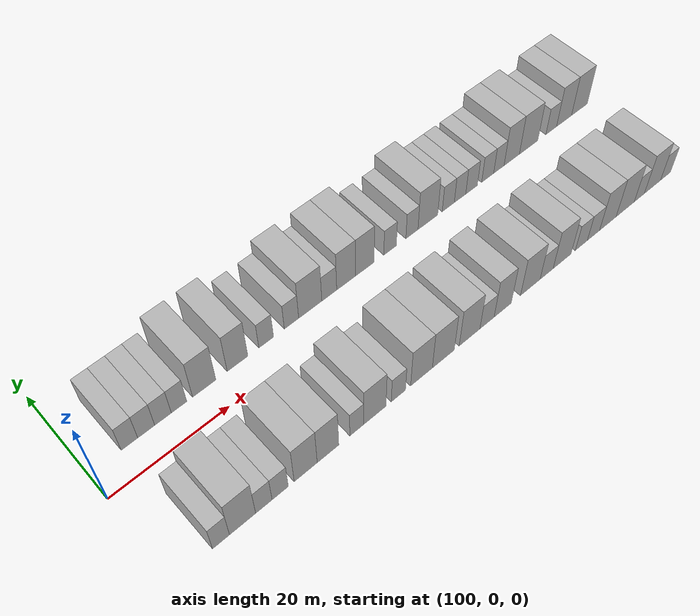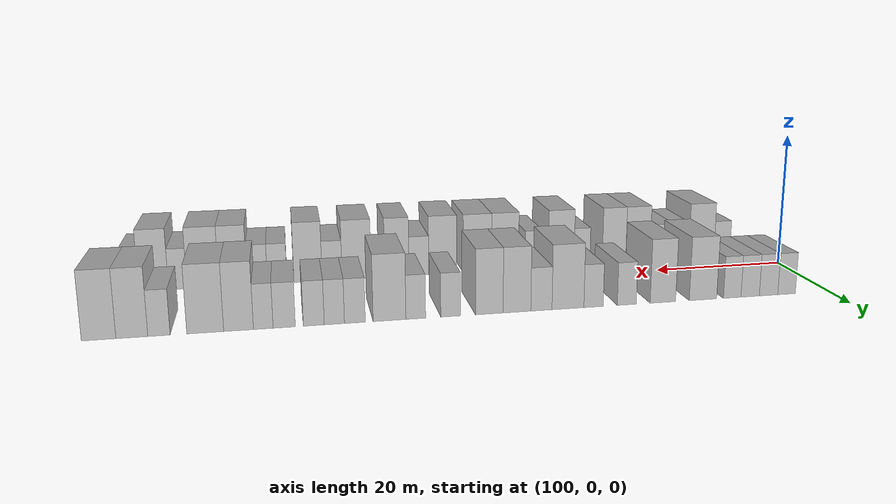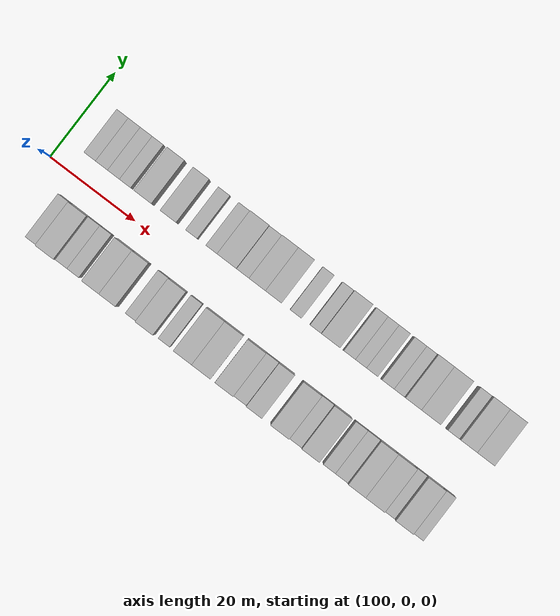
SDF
<sdf version="1.6">
 <world name="default">
  <model name="building_25">
   <static>1</static>
   <pose>106.5121 9.5000 0 0.000000 0.000000 1.570796</pose>
   <link name="link">
    <pose>0 0 3.00 0 0 0</pose>
    <collision name="collision"><geometry><box><size>10.0000 2.6872 6.0000</size></box></geometry></collision>
    <visual name="visual">
     <cast_shadows>0</cast_shadows>
     <geometry><box><size>10.0000 2.6872 6.0000</size></box></geometry>
     <material>
      <script>
       <uri>model://HANNAS_wall/materials/scripts</uri>
       <uri>model://HANNAS_wall/materials/textures</uri>
       <name>vrc/HANNAS_wall</name>
      </script>
     </material>
    </visual>
   </link>
  </model>
  <model name="building_26">
   <static>1</static>
   <pose>109.2533 9.5000 0 0.000000 0.000000 1.570796</pose>
   <link name="link">
    <pose>0 0 3.00 0 0 0</pose>
    <collision name="collision"><geometry><box><size>10.0000 2.7952 6.0000</size></box></geometry></collision>
    <visual name="visual">
     <cast_shadows>0</cast_shadows>
     <geometry><box><size>10.0000 2.7952 6.0000</size></box></geometry>
     <material>
      <script>
       <uri>model://HANNAS_wall/materials/scripts</uri>
       <uri>model://HANNAS_wall/materials/textures</uri>
       <name>vrc/HANNAS_wall</name>
      </script>
     </material>
    </visual>
   </link>
  </model>
  <model name="building_27">
   <static>1</static>
   <pose>112.0326 9.5000 0 0.000000 0.000000 1.570796</pose>
   <link name="link">
    <pose>0 0 3.00 0 0 0</pose>
    <collision name="collision"><geometry><box><size>10.0000 2.7635 6.0000</size></box></geometry></collision>
    <visual name="visual">
     <cast_shadows>0</cast_shadows>
     <geometry><box><size>10.0000 2.7635 6.0000</size></box></geometry>
     <material>
      <script>
       <uri>model://HANNAS_wall/materials/scripts</uri>
       <uri>model://HANNAS_wall/materials/textures</uri>
       <name>vrc/HANNAS_wall</name>
      </script>
     </material>
    </visual>
   </link>
  </model>
  <model name="building_28">
   <static>1</static>
   <pose>114.7255 9.5000 0 0.000000 0.000000 1.570796</pose>
   <link name="link">
    <pose>0 0 3.00 0 0 0</pose>
    <collision name="collision"><geometry><box><size>10.0000 2.6223 6.0000</size></box></geometry></collision>
    <visual name="visual">
     <cast_shadows>0</cast_shadows>
     <geometry><box><size>10.0000 2.6223 6.0000</size></box></geometry>
     <material>
      <script>
       <uri>model://HANNAS_wall/materials/scripts</uri>
       <uri>model://HANNAS_wall/materials/textures</uri>
       <name>vrc/HANNAS_wall</name>
      </script>
     </material>
    </visual>
   </link>
  </model>
  <model name="building_29">
   <static>1</static>
   <pose>119.0576 9.5000 0 0.000000 0.000000 1.570796</pose>
   <link name="link">
    <pose>0 0 4.50 0 0 0</pose>
    <collision name="collision"><geometry><box><size>10.0000 4.0419 9.0000</size></box></geometry></collision>
    <visual name="visual">
     <cast_shadows>0</cast_shadows>
     <geometry><box><size>10.0000 4.0419 9.0000</size></box></geometry>
     <material>
      <script>
       <uri>model://HANNAS_wall/materials/scripts</uri>
       <uri>model://HANNAS_wall/materials/textures</uri>
       <name>vrc/HANNAS_wall</name>
      </script>
     </material>
    </visual>
   </link>
  </model>
  <model name="building_30">
   <static>1</static>
   <pose>124.9301 9.5000 0 0.000000 0.000000 1.570796</pose>
   <link name="link">
    <pose>0 0 4.50 0 0 0</pose>
    <collision name="collision"><geometry><box><size>10.0000 3.7030 9.0000</size></box></geometry></collision>
    <visual name="visual">
     <cast_shadows>0</cast_shadows>
     <geometry><box><size>10.0000 3.7030 9.0000</size></box></geometry>
     <material>
      <script>
       <uri>model://HANNAS_wall/materials/scripts</uri>
       <uri>model://HANNAS_wall/materials/textures</uri>
       <name>vrc/HANNAS_wall</name>
      </script>
     </material>
    </visual>
   </link>
  </model>
  <model name="building_31">
   <static>1</static>
   <pose>130.1375 9.5000 0 0.000000 0.000000 1.570796</pose>
   <link name="link">
    <pose>0 0 3.00 0 0 0</pose>
    <collision name="collision"><geometry><box><size>10.0000 2.7120 6.0000</size></box></geometry></collision>
    <visual name="visual">
     <cast_shadows>0</cast_shadows>
     <geometry><box><size>10.0000 2.7120 6.0000</size></box></geometry>
     <material>
      <script>
       <uri>model://HANNAS_wall/materials/scripts</uri>
       <uri>model://HANNAS_wall/materials/textures</uri>
       <name>vrc/HANNAS_wall</name>
      </script>
     </material>
    </visual>
   </link>
  </model>
  <model name="building_32">
   <static>1</static>
   <pose>134.8519 9.5000 0 0.000000 0.000000 1.570796</pose>
   <link name="link">
    <pose>0 0 3.00 0 0 0</pose>
    <collision name="collision"><geometry><box><size>10.0000 2.7168 6.0000</size></box></geometry></collision>
    <visual name="visual">
     <cast_shadows>0</cast_shadows>
     <geometry><box><size>10.0000 2.7168 6.0000</size></box></geometry>
     <material>
      <script>
       <uri>model://HANNAS_wall/materials/scripts</uri>
       <uri>model://HANNAS_wall/materials/textures</uri>
       <name>vrc/HANNAS_wall</name>
      </script>
     </material>
    </visual>
   </link>
  </model>
  <model name="building_33">
   <static>1</static>
   <pose>138.4363 9.5000 0 0.000000 0.000000 1.570796</pose>
   <link name="link">
    <pose>0 0 4.50 0 0 0</pose>
    <collision name="collision"><geometry><box><size>10.0000 4.4521 9.0000</size></box></geometry></collision>
    <visual name="visual">
     <cast_shadows>0</cast_shadows>
     <geometry><box><size>10.0000 4.4521 9.0000</size></box></geometry>
     <material>
      <script>
       <uri>model://HANNAS_wall/materials/scripts</uri>
       <uri>model://HANNAS_wall/materials/textures</uri>
       <name>vrc/HANNAS_wall</name>
      </script>
     </material>
    </visual>
   </link>
  </model>
  <model name="building_34">
   <static>1</static>
   <pose>142.1245 9.5000 0 0.000000 0.000000 1.570796</pose>
   <link name="link">
    <pose>0 0 3.00 0 0 0</pose>
    <collision name="collision"><geometry><box><size>10.0000 2.9242 6.0000</size></box></geometry></collision>
    <visual name="visual">
     <cast_shadows>0</cast_shadows>
     <geometry><box><size>10.0000 2.9242 6.0000</size></box></geometry>
     <material>
      <script>
       <uri>model://HANNAS_wall/materials/scripts</uri>
       <uri>model://HANNAS_wall/materials/textures</uri>
       <name>vrc/HANNAS_wall</name>
      </script>
     </material>
    </visual>
   </link>
  </model>
  <model name="building_35">
   <static>1</static>
   <pose>145.4801 9.5000 0 0.000000 0.000000 1.570796</pose>
   <link name="link">
    <pose>0 0 4.50 0 0 0</pose>
    <collision name="collision"><geometry><box><size>10.0000 3.7871 9.0000</size></box></geometry></collision>
    <visual name="visual">
     <cast_shadows>0</cast_shadows>
     <geometry><box><size>10.0000 3.7871 9.0000</size></box></geometry>
     <material>
      <script>
       <uri>model://HANNAS_wall/materials/scripts</uri>
       <uri>model://HANNAS_wall/materials/textures</uri>
       <name>vrc/HANNAS_wall</name>
      </script>
     </material>
    </visual>
   </link>
  </model>
  <model name="building_36">
   <static>1</static>
   <pose>149.2452 9.5000 0 0.000000 0.000000 1.570796</pose>
   <link name="link">
    <pose>0 0 4.50 0 0 0</pose>
    <collision name="collision"><geometry><box><size>10.0000 3.7432 9.0000</size></box></geometry></collision>
    <visual name="visual">
     <cast_shadows>0</cast_shadows>
     <geometry><box><size>10.0000 3.7432 9.0000</size></box></geometry>
     <material>
      <script>
       <uri>model://HANNAS_wall/materials/scripts</uri>
       <uri>model://HANNAS_wall/materials/textures</uri>
       <name>vrc/HANNAS_wall</name>
      </script>
     </material>
    </visual>
   </link>
  </model>
  <model name="building_37">
   <static>1</static>
   <pose>154.4334 9.5000 0 0.000000 0.000000 1.570796</pose>
   <link name="link">
    <pose>0 0 3.00 0 0 0</pose>
    <collision name="collision"><geometry><box><size>10.0000 2.6331 6.0000</size></box></geometry></collision>
    <visual name="visual">
     <cast_shadows>0</cast_shadows>
     <geometry><box><size>10.0000 2.6331 6.0000</size></box></geometry>
     <material>
      <script>
       <uri>model://HANNAS_wall/materials/scripts</uri>
       <uri>model://HANNAS_wall/materials/textures</uri>
       <name>vrc/HANNAS_wall</name>
      </script>
     </material>
    </visual>
   </link>
  </model>
  <model name="building_38">
   <static>1</static>
   <pose>159.0408 9.5000 0 0.000000 0.000000 1.570796</pose>
   <link name="link">
    <pose>0 0 3.00 0 0 0</pose>
    <collision name="collision"><geometry><box><size>10.0000 2.5816 6.0000</size></box></geometry></collision>
    <visual name="visual">
     <cast_shadows>0</cast_shadows>
     <geometry><box><size>10.0000 2.5816 6.0000</size></box></geometry>
     <material>
      <script>
       <uri>model://HANNAS_wall/materials/scripts</uri>
       <uri>model://HANNAS_wall/materials/textures</uri>
       <name>vrc/HANNAS_wall</name>
      </script>
     </material>
    </visual>
   </link>
  </model>
  <model name="building_39">
   <static>1</static>
   <pose>162.4685 9.5000 0 0.000000 0.000000 1.570796</pose>
   <link name="link">
    <pose>0 0 4.50 0 0 0</pose>
    <collision name="collision"><geometry><box><size>10.0000 4.2739 9.0000</size></box></geometry></collision>
    <visual name="visual">
     <cast_shadows>0</cast_shadows>
     <geometry><box><size>10.0000 4.2739 9.0000</size></box></geometry>
     <material>
      <script>
       <uri>model://HANNAS_wall/materials/scripts</uri>
       <uri>model://HANNAS_wall/materials/textures</uri>
       <name>vrc/HANNAS_wall</name>
      </script>
     </material>
    </visual>
   </link>
  </model>
  <model name="building_40">
   <static>1</static>
   <pose>166.9458 9.5000 0 0.000000 0.000000 1.570796</pose>
   <link name="link">
    <pose>0 0 3.00 0 0 0</pose>
    <collision name="collision"><geometry><box><size>10.0000 2.6807 6.0000</size></box></geometry></collision>
    <visual name="visual">
     <cast_shadows>0</cast_shadows>
     <geometry><box><size>10.0000 2.6807 6.0000</size></box></geometry>
     <material>
      <script>
       <uri>model://HANNAS_wall/materials/scripts</uri>
       <uri>model://HANNAS_wall/materials/textures</uri>
       <name>vrc/HANNAS_wall</name>
      </script>
     </material>
    </visual>
   </link>
  </model>
  <model name="building_41">
   <static>1</static>
   <pose>169.5726 9.5000 0 0.000000 0.000000 1.570796</pose>
   <link name="link">
    <pose>0 0 3.00 0 0 0</pose>
    <collision name="collision"><geometry><box><size>10.0000 2.5728 6.0000</size></box></geometry></collision>
    <visual name="visual">
     <cast_shadows>0</cast_shadows>
     <geometry><box><size>10.0000 2.5728 6.0000</size></box></geometry>
     <material>
      <script>
       <uri>model://HANNAS_wall/materials/scripts</uri>
       <uri>model://HANNAS_wall/materials/textures</uri>
       <name>vrc/HANNAS_wall</name>
      </script>
     </material>
    </visual>
   </link>
  </model>
  <model name="building_42">
   <static>1</static>
   <pose>172.1773 9.5000 0 0.000000 0.000000 1.570796</pose>
   <link name="link">
    <pose>0 0 3.00 0 0 0</pose>
    <collision name="collision"><geometry><box><size>10.0000 2.6367 6.0000</size></box></geometry></collision>
    <visual name="visual">
     <cast_shadows>0</cast_shadows>
     <geometry><box><size>10.0000 2.6367 6.0000</size></box></geometry>
     <material>
      <script>
       <uri>model://HANNAS_wall/materials/scripts</uri>
       <uri>model://HANNAS_wall/materials/textures</uri>
       <name>vrc/HANNAS_wall</name>
      </script>
     </material>
    </visual>
   </link>
  </model>
  <model name="building_43">
   <static>1</static>
   <pose>175.8861 9.5000 0 0.000000 0.000000 1.570796</pose>
   <link name="link">
    <pose>0 0 3.00 0 0 0</pose>
    <collision name="collision"><geometry><box><size>10.0000 2.7808 6.0000</size></box></geometry></collision>
    <visual name="visual">
     <cast_shadows>0</cast_shadows>
     <geometry><box><size>10.0000 2.7808 6.0000</size></box></geometry>
     <material>
      <script>
       <uri>model://HANNAS_wall/materials/scripts</uri>
       <uri>model://HANNAS_wall/materials/textures</uri>
       <name>vrc/HANNAS_wall</name>
      </script>
     </material>
    </visual>
   </link>
  </model>
  <model name="building_44">
   <static>1</static>
   <pose>178.4936 9.5000 0 0.000000 0.000000 1.570796</pose>
   <link name="link">
    <pose>0 0 3.00 0 0 0</pose>
    <collision name="collision"><geometry><box><size>10.0000 2.4342 6.0000</size></box></geometry></collision>
    <visual name="visual">
     <cast_shadows>0</cast_shadows>
     <geometry><box><size>10.0000 2.4342 6.0000</size></box></geometry>
     <material>
      <script>
       <uri>model://HANNAS_wall/materials/scripts</uri>
       <uri>model://HANNAS_wall/materials/textures</uri>
       <name>vrc/HANNAS_wall</name>
      </script>
     </material>
    </visual>
   </link>
  </model>
  <model name="building_45">
   <static>1</static>
   <pose>181.5365 9.5000 0 0.000000 0.000000 1.570796</pose>
   <link name="link">
    <pose>0 0 4.50 0 0 0</pose>
    <collision name="collision"><geometry><box><size>10.0000 3.6516 9.0000</size></box></geometry></collision>
    <visual name="visual">
     <cast_shadows>0</cast_shadows>
     <geometry><box><size>10.0000 3.6516 9.0000</size></box></geometry>
     <material>
      <script>
       <uri>model://HANNAS_wall/materials/scripts</uri>
       <uri>model://HANNAS_wall/materials/textures</uri>
       <name>vrc/HANNAS_wall</name>
      </script>
     </material>
    </visual>
   </link>
  </model>
  <model name="building_46">
   <static>1</static>
   <pose>185.5934 9.5000 0 0.000000 0.000000 1.570796</pose>
   <link name="link">
    <pose>0 0 4.50 0 0 0</pose>
    <collision name="collision"><geometry><box><size>10.0000 4.4623 9.0000</size></box></geometry></collision>
    <visual name="visual">
     <cast_shadows>0</cast_shadows>
     <geometry><box><size>10.0000 4.4623 9.0000</size></box></geometry>
     <material>
      <script>
       <uri>model://HANNAS_wall/materials/scripts</uri>
       <uri>model://HANNAS_wall/materials/textures</uri>
       <name>vrc/HANNAS_wall</name>
      </script>
     </material>
    </visual>
   </link>
  </model>
  <model name="building_47">
   <static>1</static>
   <pose>191.1492 9.5000 0 0.000000 0.000000 1.570796</pose>
   <link name="link">
    <pose>0 0 3.00 0 0 0</pose>
    <collision name="collision"><geometry><box><size>10.0000 2.6492 6.0000</size></box></geometry></collision>
    <visual name="visual">
     <cast_shadows>0</cast_shadows>
     <geometry><box><size>10.0000 2.6492 6.0000</size></box></geometry>
     <material>
      <script>
       <uri>model://HANNAS_wall/materials/scripts</uri>
       <uri>model://HANNAS_wall/materials/textures</uri>
       <name>vrc/HANNAS_wall</name>
      </script>
     </material>
    </visual>
   </link>
  </model>
  <model name="building_48">
   <static>1</static>
   <pose>194.3569 9.5000 0 0.000000 0.000000 1.570796</pose>
   <link name="link">
    <pose>0 0 4.50 0 0 0</pose>
    <collision name="collision"><geometry><box><size>10.0000 3.7663 9.0000</size></box></geometry></collision>
    <visual name="visual">
     <cast_shadows>0</cast_shadows>
     <geometry><box><size>10.0000 3.7663 9.0000</size></box></geometry>
     <material>
      <script>
       <uri>model://HANNAS_wall/materials/scripts</uri>
       <uri>model://HANNAS_wall/materials/textures</uri>
       <name>vrc/HANNAS_wall</name>
      </script>
     </material>
    </visual>
   </link>
  </model>
  <model name="building_49">
   <static>1</static>
   <pose>198.2549 9.5000 0 0.000000 0.000000 1.570796</pose>
   <link name="link">
    <pose>0 0 4.50 0 0 0</pose>
    <collision name="collision"><geometry><box><size>10.0000 4.0296 9.0000</size></box></geometry></collision>
    <visual name="visual">
     <cast_shadows>0</cast_shadows>
     <geometry><box><size>10.0000 4.0296 9.0000</size></box></geometry>
     <material>
      <script>
       <uri>model://HANNAS_wall/materials/scripts</uri>
       <uri>model://HANNAS_wall/materials/textures</uri>
       <name>vrc/HANNAS_wall</name>
      </script>
     </material>
    </visual>
   </link>
  </model>
  <model name="building_75">
   <static>1</static>
   <pose>107.3793 -9.5000 0 0.000000 0.000000 1.570796</pose>
   <link name="link">
    <pose>0 0 3.00 0 0 0</pose>
    <collision name="collision"><geometry><box><size>10.0000 2.7165 6.0000</size></box></geometry></collision>
    <visual name="visual">
     <cast_shadows>0</cast_shadows>
     <geometry><box><size>10.0000 2.7165 6.0000</size></box></geometry>
     <material>
      <script>
       <uri>model://HANNAS_wall/materials/scripts</uri>
       <uri>model://HANNAS_wall/materials/textures</uri>
       <name>vrc/HANNAS_wall</name>
      </script>
     </material>
    </visual>
   </link>
  </model>
  <model name="building_76">
   <static>1</static>
   <pose>110.8692 -9.5000 0 0.000000 0.000000 1.570796</pose>
   <link name="link">
    <pose>0 0 4.50 0 0 0</pose>
    <collision name="collision"><geometry><box><size>10.0000 4.2633 9.0000</size></box></geometry></collision>
    <visual name="visual">
     <cast_shadows>0</cast_shadows>
     <geometry><box><size>10.0000 4.2633 9.0000</size></box></geometry>
     <material>
      <script>
       <uri>model://HANNAS_wall/materials/scripts</uri>
       <uri>model://HANNAS_wall/materials/textures</uri>
       <name>vrc/HANNAS_wall</name>
      </script>
     </material>
    </visual>
   </link>
  </model>
  <model name="building_77">
   <static>1</static>
   <pose>114.3655 -9.5000 0 0.000000 0.000000 1.570796</pose>
   <link name="link">
    <pose>0 0 3.00 0 0 0</pose>
    <collision name="collision"><geometry><box><size>10.0000 2.7294 6.0000</size></box></geometry></collision>
    <visual name="visual">
     <cast_shadows>0</cast_shadows>
     <geometry><box><size>10.0000 2.7294 6.0000</size></box></geometry>
     <material>
      <script>
       <uri>model://HANNAS_wall/materials/scripts</uri>
       <uri>model://HANNAS_wall/materials/textures</uri>
       <name>vrc/HANNAS_wall</name>
      </script>
     </material>
    </visual>
   </link>
  </model>
  <model name="building_78">
   <static>1</static>
   <pose>117.0975 -9.5000 0 0.000000 0.000000 1.570796</pose>
   <link name="link">
    <pose>0 0 3.00 0 0 0</pose>
    <collision name="collision"><geometry><box><size>10.0000 2.7346 6.0000</size></box></geometry></collision>
    <visual name="visual">
     <cast_shadows>0</cast_shadows>
     <geometry><box><size>10.0000 2.7346 6.0000</size></box></geometry>
     <material>
      <script>
       <uri>model://HANNAS_wall/materials/scripts</uri>
       <uri>model://HANNAS_wall/materials/textures</uri>
       <name>vrc/HANNAS_wall</name>
      </script>
     </material>
    </visual>
   </link>
  </model>
  <model name="building_79">
   <static>1</static>
   <pose>121.4589 -9.5000 0 0.000000 0.000000 1.570796</pose>
   <link name="link">
    <pose>0 0 4.50 0 0 0</pose>
    <collision name="collision"><geometry><box><size>10.0000 3.9882 9.0000</size></box></geometry></collision>
    <visual name="visual">
     <cast_shadows>0</cast_shadows>
     <geometry><box><size>10.0000 3.9882 9.0000</size></box></geometry>
     <material>
      <script>
       <uri>model://HANNAS_wall/materials/scripts</uri>
       <uri>model://HANNAS_wall/materials/textures</uri>
       <name>vrc/HANNAS_wall</name>
      </script>
     </material>
    </visual>
   </link>
  </model>
  <model name="building_80">
   <static>1</static>
   <pose>125.3624 -9.5000 0 0.000000 0.000000 1.570796</pose>
   <link name="link">
    <pose>0 0 4.50 0 0 0</pose>
    <collision name="collision"><geometry><box><size>10.0000 3.8188 9.0000</size></box></geometry></collision>
    <visual name="visual">
     <cast_shadows>0</cast_shadows>
     <geometry><box><size>10.0000 3.8188 9.0000</size></box></geometry>
     <material>
      <script>
       <uri>model://HANNAS_wall/materials/scripts</uri>
       <uri>model://HANNAS_wall/materials/textures</uri>
       <name>vrc/HANNAS_wall</name>
      </script>
     </material>
    </visual>
   </link>
  </model>
  <model name="building_81">
   <static>1</static>
   <pose>130.5413 -9.5000 0 0.000000 0.000000 1.570796</pose>
   <link name="link">
    <pose>0 0 3.00 0 0 0</pose>
    <collision name="collision"><geometry><box><size>10.0000 2.5390 6.0000</size></box></geometry></collision>
    <visual name="visual">
     <cast_shadows>0</cast_shadows>
     <geometry><box><size>10.0000 2.5390 6.0000</size></box></geometry>
     <material>
      <script>
       <uri>model://HANNAS_wall/materials/scripts</uri>
       <uri>model://HANNAS_wall/materials/textures</uri>
       <name>vrc/HANNAS_wall</name>
      </script>
     </material>
    </visual>
   </link>
  </model>
  <model name="building_82">
   <static>1</static>
   <pose>133.8650 -9.5000 0 0.000000 0.000000 1.570796</pose>
   <link name="link">
    <pose>0 0 4.50 0 0 0</pose>
    <collision name="collision"><geometry><box><size>10.0000 4.1084 9.0000</size></box></geometry></collision>
    <visual name="visual">
     <cast_shadows>0</cast_shadows>
     <geometry><box><size>10.0000 4.1084 9.0000</size></box></geometry>
     <material>
      <script>
       <uri>model://HANNAS_wall/materials/scripts</uri>
       <uri>model://HANNAS_wall/materials/textures</uri>
       <name>vrc/HANNAS_wall</name>
      </script>
     </material>
    </visual>
   </link>
  </model>
  <model name="building_83">
   <static>1</static>
   <pose>138.2683 -9.5000 0 0.000000 0.000000 1.570796</pose>
   <link name="link">
    <pose>0 0 3.00 0 0 0</pose>
    <collision name="collision"><geometry><box><size>10.0000 2.6982 6.0000</size></box></geometry></collision>
    <visual name="visual">
     <cast_shadows>0</cast_shadows>
     <geometry><box><size>10.0000 2.6982 6.0000</size></box></geometry>
     <material>
      <script>
       <uri>model://HANNAS_wall/materials/scripts</uri>
       <uri>model://HANNAS_wall/materials/textures</uri>
       <name>vrc/HANNAS_wall</name>
      </script>
     </material>
    </visual>
   </link>
  </model>
  <model name="building_84">
   <static>1</static>
   <pose>142.7337 -9.5000 0 0.000000 0.000000 1.570796</pose>
   <link name="link">
    <pose>0 0 4.50 0 0 0</pose>
    <collision name="collision"><geometry><box><size>10.0000 4.2327 9.0000</size></box></geometry></collision>
    <visual name="visual">
     <cast_shadows>0</cast_shadows>
     <geometry><box><size>10.0000 4.2327 9.0000</size></box></geometry>
     <material>
      <script>
       <uri>model://HANNAS_wall/materials/scripts</uri>
       <uri>model://HANNAS_wall/materials/textures</uri>
       <name>vrc/HANNAS_wall</name>
      </script>
     </material>
    </visual>
   </link>
  </model>
  <model name="building_85">
   <static>1</static>
   <pose>147.0304 -9.5000 0 0.000000 0.000000 1.570796</pose>
   <link name="link">
    <pose>0 0 4.50 0 0 0</pose>
    <collision name="collision"><geometry><box><size>10.0000 4.3606 9.0000</size></box></geometry></collision>
    <visual name="visual">
     <cast_shadows>0</cast_shadows>
     <geometry><box><size>10.0000 4.3606 9.0000</size></box></geometry>
     <material>
      <script>
       <uri>model://HANNAS_wall/materials/scripts</uri>
       <uri>model://HANNAS_wall/materials/textures</uri>
       <name>vrc/HANNAS_wall</name>
      </script>
     </material>
    </visual>
   </link>
  </model>
  <model name="building_86">
   <static>1</static>
   <pose>152.3359 -9.5000 0 0.000000 0.000000 1.570796</pose>
   <link name="link">
    <pose>0 0 4.50 0 0 0</pose>
    <collision name="collision"><geometry><box><size>10.0000 4.2503 9.0000</size></box></geometry></collision>
    <visual name="visual">
     <cast_shadows>0</cast_shadows>
     <geometry><box><size>10.0000 4.2503 9.0000</size></box></geometry>
     <material>
      <script>
       <uri>model://HANNAS_wall/materials/scripts</uri>
       <uri>model://HANNAS_wall/materials/textures</uri>
       <name>vrc/HANNAS_wall</name>
      </script>
     </material>
    </visual>
   </link>
  </model>
  <model name="building_87">
   <static>1</static>
   <pose>155.9475 -9.5000 0 0.000000 0.000000 1.570796</pose>
   <link name="link">
    <pose>0 0 3.00 0 0 0</pose>
    <collision name="collision"><geometry><box><size>10.0000 2.9730 6.0000</size></box></geometry></collision>
    <visual name="visual">
     <cast_shadows>0</cast_shadows>
     <geometry><box><size>10.0000 2.9730 6.0000</size></box></geometry>
     <material>
      <script>
       <uri>model://HANNAS_wall/materials/scripts</uri>
       <uri>model://HANNAS_wall/materials/textures</uri>
       <name>vrc/HANNAS_wall</name>
      </script>
     </material>
    </visual>
   </link>
  </model>
  <model name="building_88">
   <static>1</static>
   <pose>159.2566 -9.5000 0 0.000000 0.000000 1.570796</pose>
   <link name="link">
    <pose>0 0 4.50 0 0 0</pose>
    <collision name="collision"><geometry><box><size>10.0000 3.6452 9.0000</size></box></geometry></collision>
    <visual name="visual">
     <cast_shadows>0</cast_shadows>
     <geometry><box><size>10.0000 3.6452 9.0000</size></box></geometry>
     <material>
      <script>
       <uri>model://HANNAS_wall/materials/scripts</uri>
       <uri>model://HANNAS_wall/materials/textures</uri>
       <name>vrc/HANNAS_wall</name>
      </script>
     </material>
    </visual>
   </link>
  </model>
  <model name="building_89">
   <static>1</static>
   <pose>165.2263 -9.5000 0 0.000000 0.000000 1.570796</pose>
   <link name="link">
    <pose>0 0 4.50 0 0 0</pose>
    <collision name="collision"><geometry><box><size>10.0000 4.2940 9.0000</size></box></geometry></collision>
    <visual name="visual">
     <cast_shadows>0</cast_shadows>
     <geometry><box><size>10.0000 4.2940 9.0000</size></box></geometry>
     <material>
      <script>
       <uri>model://HANNAS_wall/materials/scripts</uri>
       <uri>model://HANNAS_wall/materials/textures</uri>
       <name>vrc/HANNAS_wall</name>
      </script>
     </material>
    </visual>
   </link>
  </model>
  <model name="building_90">
   <static>1</static>
   <pose>168.8315 -9.5000 0 0.000000 0.000000 1.570796</pose>
   <link name="link">
    <pose>0 0 3.00 0 0 0</pose>
    <collision name="collision"><geometry><box><size>10.0000 2.9164 6.0000</size></box></geometry></collision>
    <visual name="visual">
     <cast_shadows>0</cast_shadows>
     <geometry><box><size>10.0000 2.9164 6.0000</size></box></geometry>
     <material>
      <script>
       <uri>model://HANNAS_wall/materials/scripts</uri>
       <uri>model://HANNAS_wall/materials/textures</uri>
       <name>vrc/HANNAS_wall</name>
      </script>
     </material>
    </visual>
   </link>
  </model>
  <model name="building_91">
   <static>1</static>
   <pose>172.3234 -9.5000 0 0.000000 0.000000 1.570796</pose>
   <link name="link">
    <pose>0 0 4.50 0 0 0</pose>
    <collision name="collision"><geometry><box><size>10.0000 4.0674 9.0000</size></box></geometry></collision>
    <visual name="visual">
     <cast_shadows>0</cast_shadows>
     <geometry><box><size>10.0000 4.0674 9.0000</size></box></geometry>
     <material>
      <script>
       <uri>model://HANNAS_wall/materials/scripts</uri>
       <uri>model://HANNAS_wall/materials/textures</uri>
       <name>vrc/HANNAS_wall</name>
      </script>
     </material>
    </visual>
   </link>
  </model>
  <model name="building_92">
   <static>1</static>
   <pose>176.7554 -9.5000 0 0.000000 0.000000 1.570796</pose>
   <link name="link">
    <pose>0 0 3.00 0 0 0</pose>
    <collision name="collision"><geometry><box><size>10.0000 2.7967 6.0000</size></box></geometry></collision>
    <visual name="visual">
     <cast_shadows>0</cast_shadows>
     <geometry><box><size>10.0000 2.7967 6.0000</size></box></geometry>
     <material>
      <script>
       <uri>model://HANNAS_wall/materials/scripts</uri>
       <uri>model://HANNAS_wall/materials/textures</uri>
       <name>vrc/HANNAS_wall</name>
      </script>
     </material>
    </visual>
   </link>
  </model>
  <model name="building_93">
   <static>1</static>
   <pose>179.5930 -9.5000 0 0.000000 0.000000 1.570796</pose>
   <link name="link">
    <pose>0 0 3.00 0 0 0</pose>
    <collision name="collision"><geometry><box><size>10.0000 2.8785 6.0000</size></box></geometry></collision>
    <visual name="visual">
     <cast_shadows>0</cast_shadows>
     <geometry><box><size>10.0000 2.8785 6.0000</size></box></geometry>
     <material>
      <script>
       <uri>model://HANNAS_wall/materials/scripts</uri>
       <uri>model://HANNAS_wall/materials/textures</uri>
       <name>vrc/HANNAS_wall</name>
      </script>
     </material>
    </visual>
   </link>
  </model>
  <model name="building_94">
   <static>1</static>
   <pose>183.0206 -9.5000 0 0.000000 0.000000 1.570796</pose>
   <link name="link">
    <pose>0 0 4.50 0 0 0</pose>
    <collision name="collision"><geometry><box><size>10.0000 3.9768 9.0000</size></box></geometry></collision>
    <visual name="visual">
     <cast_shadows>0</cast_shadows>
     <geometry><box><size>10.0000 3.9768 9.0000</size></box></geometry>
     <material>
      <script>
       <uri>model://HANNAS_wall/materials/scripts</uri>
       <uri>model://HANNAS_wall/materials/textures</uri>
       <name>vrc/HANNAS_wall</name>
      </script>
     </material>
    </visual>
   </link>
  </model>
  <model name="building_95">
   <static>1</static>
   <pose>187.2249 -9.5000 0 0.000000 0.000000 1.570796</pose>
   <link name="link">
    <pose>0 0 4.50 0 0 0</pose>
    <collision name="collision"><geometry><box><size>10.0000 4.4318 9.0000</size></box></geometry></collision>
    <visual name="visual">
     <cast_shadows>0</cast_shadows>
     <geometry><box><size>10.0000 4.4318 9.0000</size></box></geometry>
     <material>
      <script>
       <uri>model://HANNAS_wall/materials/scripts</uri>
       <uri>model://HANNAS_wall/materials/textures</uri>
       <name>vrc/HANNAS_wall</name>
      </script>
     </material>
    </visual>
   </link>
  </model>
  <model name="building_96">
   <static>1</static>
   <pose>190.7009 -9.5000 0 0.000000 0.000000 1.570796</pose>
   <link name="link">
    <pose>0 0 3.00 0 0 0</pose>
    <collision name="collision"><geometry><box><size>10.0000 2.5202 6.0000</size></box></geometry></collision>
    <visual name="visual">
     <cast_shadows>0</cast_shadows>
     <geometry><box><size>10.0000 2.5202 6.0000</size></box></geometry>
     <material>
      <script>
       <uri>model://HANNAS_wall/materials/scripts</uri>
       <uri>model://HANNAS_wall/materials/textures</uri>
       <name>vrc/HANNAS_wall</name>
      </script>
     </material>
    </visual>
   </link>
  </model>
  <model name="building_97">
   <static>1</static>
   <pose>194.0083 -9.5000 0 0.000000 0.000000 1.570796</pose>
   <link name="link">
    <pose>0 0 4.50 0 0 0</pose>
    <collision name="collision"><geometry><box><size>10.0000 4.0945 9.0000</size></box></geometry></collision>
    <visual name="visual">
     <cast_shadows>0</cast_shadows>
     <geometry><box><size>10.0000 4.0945 9.0000</size></box></geometry>
     <material>
      <script>
       <uri>model://HANNAS_wall/materials/scripts</uri>
       <uri>model://HANNAS_wall/materials/textures</uri>
       <name>vrc/HANNAS_wall</name>
      </script>
     </material>
    </visual>
   </link>
  </model>
  <model name="building_98">
   <static>1</static>
   <pose>197.3426 -9.5000 0 0.000000 0.000000 1.570796</pose>
   <link name="link">
    <pose>0 0 3.00 0 0 0</pose>
    <collision name="collision"><geometry><box><size>10.0000 2.5740 6.0000</size></box></geometry></collision>
    <visual name="visual">
     <cast_shadows>0</cast_shadows>
     <geometry><box><size>10.0000 2.5740 6.0000</size></box></geometry>
     <material>
      <script>
       <uri>model://HANNAS_wall/materials/scripts</uri>
       <uri>model://HANNAS_wall/materials/textures</uri>
       <name>vrc/HANNAS_wall</name>
      </script>
     </material>
    </visual>
   </link>
  </model>
 </world>
</sdf>
